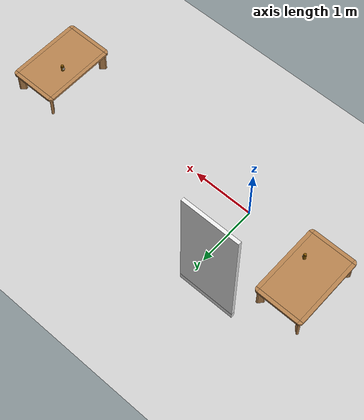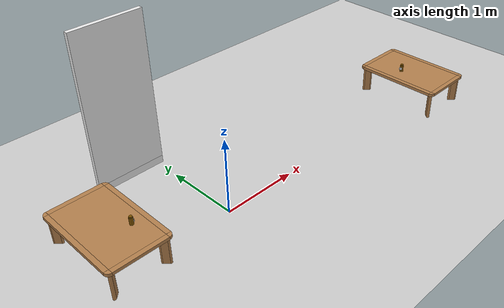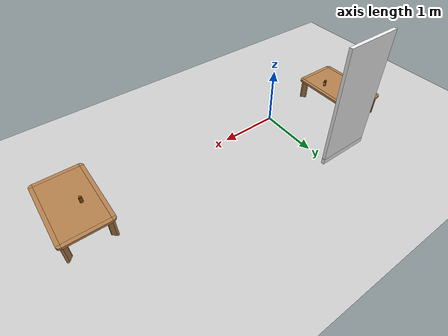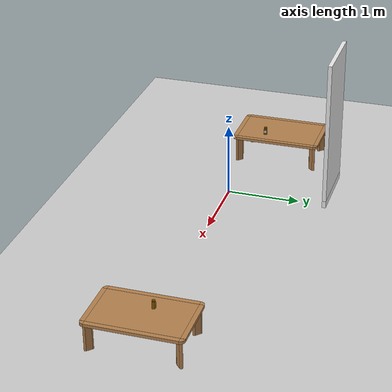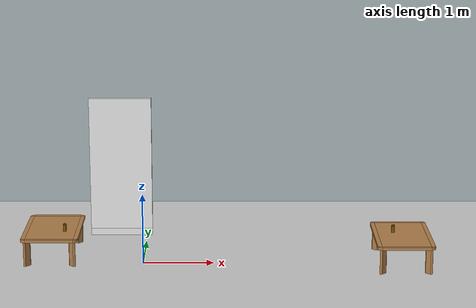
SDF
<sdf version="1.6">
 <world name="default">
  <model name="ground_plane">
   <static>1</static>
   <link name="link">
    <collision name="collision">
     <geometry><plane><normal>0 0 1</normal><size>100 100</size></plane></geometry>
     <surface><friction><ode><mu>100</mu><mu2>50</mu2></ode></friction></surface>
    </collision>
    <visual name="visual">
     <cast_shadows>0</cast_shadows>
     <geometry><plane><normal>0 0 1</normal><size>100 100</size></plane></geometry>
     <material>
      <script><uri>file://media/materials/scripts/gazebo.material</uri><name>Gazebo/Grey</name></script>
     </material>
    </visual>
   </link>
  </model>
  <model name="full_wall_55_920_2090_0">
   <link name="link">
    <inertial>
     <mass>50</mass>
     <inertia><ixx>1</ixx><ixy>0</ixy><ixz>0</ixz><iyy>1</iyy><iyz>0</iyz><izz>1</izz></inertia>
    </inertial>
    <visual name="bottom_frame">
     <pose>0 0 0.05 0 -0 0</pose>
     <geometry><box><size>0.055 0.92 0.1</size></box></geometry>
     <material>
      <script><uri>model://base_materials/color/scripts</uri><name>hsr_color/white</name></script>
     </material>
    </visual>
    <collision name="collision_bottom_frame">
     <pose>0 0 0.05 0 -0 0</pose>
     <geometry><box><size>0.055 0.92 0.1</size></box></geometry>
    </collision>
    <visual name="wall">
     <pose>0 0 1.095 0 -0 0</pose>
     <geometry><box><size>0.055 0.92 1.99</size></box></geometry>
     <material>
      <script>
       <uri>model://base_materials/wall/scripts</uri>
       <uri>model://base_materials/wall/textures</uri>
       <name>wall/white_noise</name>
      </script>
     </material>
    </visual>
    <collision name="collision_wall">
     <pose>0 0 1.095 0 -0 0</pose>
     <geometry><box><size>0.055 0.92 1.99</size></box></geometry>
    </collision>
    <velocity_decay><linear>0</linear><angular>0</angular></velocity_decay>
   </link>
   <static>1</static>
   <pose>-0.391738 1.37269 0 0 -0 1.5726</pose>
  </model>
  <model name="kitchen_lowtable_clone_3">
   <link name="link">
    <inertial>
     <mass>10</mass>
     <inertia><ixx>1</ixx><ixy>0</ixy><ixz>0</ixz><iyy>1</iyy><iyz>0</iyz><izz>1</izz></inertia>
    </inertial>
    <visual name="center_board">
     <pose>0 0 0.38 0 -0 0</pose>
     <geometry><box><size>0.68 1.13 0.04</size></box></geometry>
     <material>
      <script><uri>model://base_materials/wood/scripts/wood.material</uri><name>base_materials/wood</name></script>
     </material>
    </visual>
    <collision name="collision_center_board">
     <pose>0 0 0.38 0 -0 0</pose>
     <geometry><box><size>0.68 1.13 0.04</size></box></geometry>
    </collision>
    <visual name="front_board">
     <pose>0.37 0 0.38 0 -0 0</pose>
     <geometry><box><size>0.06 1.13 0.04</size></box></geometry>
     <material>
      <script><uri>model://base_materials/wood/scripts/wood.material</uri><name>base_materials/wood</name></script>
     </material>
    </visual>
    <collision name="collision_front_board">
     <pose>0.37 0 0.38 0 -0 0</pose>
     <geometry><box><size>0.06 1.13 0.04</size></box></geometry>
    </collision>
    <visual name="back_board">
     <pose>-0.37 0 0.38 0 -0 0</pose>
     <geometry><box><size>0.06 1.13 0.04</size></box></geometry>
     <material>
      <script><uri>model://base_materials/wood/scripts/wood.material</uri><name>base_materials/wood</name></script>
     </material>
    </visual>
    <collision name="collision_back_board">
     <pose>-0.37 0 0.38 0 -0 0</pose>
     <geometry><box><size>0.06 1.13 0.04</size></box></geometry>
    </collision>
    <visual name="right_board">
     <pose>0 0.595 0.38 0 -0 0</pose>
     <geometry><box><size>0.68 0.06 0.04</size></box></geometry>
     <material>
      <script><uri>model://base_materials/wood/scripts/wood.material</uri><name>base_materials/wood</name></script>
     </material>
    </visual>
    <collision name="collision_right_board">
     <pose>0 0.595 0.38 0 -0 0</pose>
     <geometry><box><size>0.68 0.06 0.04</size></box></geometry>
    </collision>
    <visual name="left_board">
     <pose>0 -0.595 0.38 0 -0 0</pose>
     <geometry><box><size>0.68 0.06 0.04</size></box></geometry>
     <material>
      <script><uri>model://base_materials/wood/scripts/wood.material</uri><name>base_materials/wood</name></script>
     </material>
    </visual>
    <collision name="collision_left_board">
     <pose>0 -0.595 0.38 0 -0 0</pose>
     <geometry><box><size>0.68 0.06 0.04</size></box></geometry>
    </collision>
    <visual name="front_right_corner_board">
     <pose>0.34 0.565 0.38 0 -0 0</pose>
     <geometry><cylinder><radius>0.06</radius><length>0.039</length></cylinder></geometry>
     <material>
      <script><uri>model://base_materials/wood/scripts/wood.material</uri><name>base_materials/wood</name></script>
     </material>
    </visual>
    <collision name="collision_front_right_corner_board">
     <pose>0.34 0.565 0.38 0 -0 0</pose>
     <geometry><cylinder><radius>0.06</radius><length>0.039</length></cylinder></geometry>
    </collision>
    <visual name="front_left_corner_board">
     <pose>0.34 -0.565 0.38 0 -0 0</pose>
     <geometry><cylinder><radius>0.06</radius><length>0.039</length></cylinder></geometry>
     <material>
      <script><uri>model://base_materials/wood/scripts/wood.material</uri><name>base_materials/wood</name></script>
     </material>
    </visual>
    <collision name="collision_front_left_corner_board">
     <pose>0.34 -0.565 0.38 0 -0 0</pose>
     <geometry><cylinder><radius>0.06</radius><length>0.039</length></cylinder></geometry>
    </collision>
    <visual name="front_back_right_corner_board">
     <pose>-0.34 0.565 0.38 0 -0 0</pose>
     <geometry><cylinder><radius>0.06</radius><length>0.039</length></cylinder></geometry>
     <material>
      <script><uri>model://base_materials/wood/scripts/wood.material</uri><name>base_materials/wood</name></script>
     </material>
    </visual>
    <collision name="collision_back_right_corner_board">
     <pose>-0.34 0.565 0.38 0 -0 0</pose>
     <geometry><cylinder><radius>0.06</radius><length>0.039</length></cylinder></geometry>
    </collision>
    <visual name="front_back_left_corner_board">
     <pose>-0.34 -0.565 0.38 0 -0 0</pose>
     <geometry><cylinder><radius>0.06</radius><length>0.039</length></cylinder></geometry>
     <material>
      <script><uri>model://base_materials/wood/scripts/wood.material</uri><name>base_materials/wood</name></script>
     </material>
    </visual>
    <collision name="collision_back_left_corner_board">
     <pose>-0.34 -0.565 0.38 0 -0 0</pose>
     <geometry><cylinder><radius>0.06</radius><length>0.039</length></cylinder></geometry>
    </collision>
    <visual name="front_left_corner_frame1">
     <pose>0.345858 -0.57086 0.18 0 -0 0</pose>
     <geometry><cylinder><radius>0.02</radius><length>0.36</length></cylinder></geometry>
     <material>
      <script><uri>model://base_materials/wood/scripts/wood.material</uri><name>base_materials/wood</name></script>
     </material>
    </visual>
    <collision name="collision_front_left_corner_frame1">
     <pose>0.345858 -0.57086 0.18 0 -0 0</pose>
     <geometry><cylinder><radius>0.02</radius><length>0.36</length></cylinder></geometry>
    </collision>
    <visual name="front_left_corner_frame2">
     <pose>0.317574 -0.54257 0.18 0 -0 0.7854</pose>
     <geometry><box><size>0.04 0.08 0.36</size></box></geometry>
     <material>
      <script><uri>model://base_materials/wood/scripts/wood.material</uri><name>base_materials/wood</name></script>
     </material>
    </visual>
    <collision name="collision_front_left_corner_frame2">
     <pose>0.317574 -0.54257 0.18 0 -0 0.7854</pose>
     <geometry><box><size>0.04 0.08 0.36</size></box></geometry>
    </collision>
    <visual name="front_left_corner_frame3">
     <pose>0.289289 -0.51429 0.18 0 -0 0</pose>
     <geometry><cylinder><radius>0.02</radius><length>0.36</length></cylinder></geometry>
     <material>
      <script><uri>model://base_materials/wood/scripts/wood.material</uri><name>base_materials/wood</name></script>
     </material>
    </visual>
    <collision name="collision_front_left_corner_frame3">
     <pose>0.289289 -0.51429 0.18 0 -0 0</pose>
     <geometry><cylinder><radius>0.02</radius><length>0.36</length></cylinder></geometry>
    </collision>
    <visual name="front_right_corner_frame1">
     <pose>0.345858 0.57086 0.18 0 -0 0</pose>
     <geometry><cylinder><radius>0.02</radius><length>0.36</length></cylinder></geometry>
     <material>
      <script><uri>model://base_materials/wood/scripts/wood.material</uri><name>base_materials/wood</name></script>
     </material>
    </visual>
    <collision name="collision_front_right_corner_frame1">
     <pose>0.345858 0.57086 0.18 0 -0 0</pose>
     <geometry><cylinder><radius>0.02</radius><length>0.36</length></cylinder></geometry>
    </collision>
    <visual name="front_right_corner_frame2">
     <pose>0.317574 0.54257 0.18 0 0 -0.7854</pose>
     <geometry><box><size>0.04 0.08 0.36</size></box></geometry>
     <material>
      <script><uri>model://base_materials/wood/scripts/wood.material</uri><name>base_materials/wood</name></script>
     </material>
    </visual>
    <collision name="collision_front_right_corner_frame2">
     <pose>0.317574 0.54257 0.18 0 0 -0.7854</pose>
     <geometry><box><size>0.04 0.08 0.36</size></box></geometry>
    </collision>
    <visual name="front_right_corner_frame3">
     <pose>0.289289 0.51429 0.18 0 -0 0</pose>
     <geometry><cylinder><radius>0.02</radius><length>0.36</length></cylinder></geometry>
     <material>
      <script><uri>model://base_materials/wood/scripts/wood.material</uri><name>base_materials/wood</name></script>
     </material>
    </visual>
    <collision name="collision_front_right_corner_frame3">
     <pose>0.289289 0.51429 0.18 0 -0 0</pose>
     <geometry><cylinder><radius>0.02</radius><length>0.36</length></cylinder></geometry>
    </collision>
    <visual name="back_left_corner_frame1">
     <pose>-0.345858 -0.57086 0.18 0 -0 0</pose>
     <geometry><cylinder><radius>0.02</radius><length>0.36</length></cylinder></geometry>
     <material>
      <script><uri>model://base_materials/wood/scripts/wood.material</uri><name>base_materials/wood</name></script>
     </material>
    </visual>
    <collision name="collision_back_left_corner_frame1">
     <pose>-0.345858 -0.57086 0.18 0 -0 0</pose>
     <geometry><cylinder><radius>0.02</radius><length>0.36</length></cylinder></geometry>
    </collision>
    <visual name="back_left_corner_frame2">
     <pose>-0.317574 -0.54257 0.18 0 0 -0.7854</pose>
     <geometry><box><size>0.04 0.08 0.36</size></box></geometry>
     <material>
      <script><uri>model://base_materials/wood/scripts/wood.material</uri><name>base_materials/wood</name></script>
     </material>
    </visual>
    <collision name="collision_back_left_corner_frame2">
     <pose>-0.317574 -0.54257 0.18 0 0 -0.7854</pose>
     <geometry><box><size>0.04 0.08 0.36</size></box></geometry>
    </collision>
    <visual name="back_left_corner_frame3">
     <pose>-0.289289 -0.51429 0.18 0 -0 0</pose>
     <geometry><cylinder><radius>0.02</radius><length>0.36</length></cylinder></geometry>
     <material>
      <script><uri>model://base_materials/wood/scripts/wood.material</uri><name>base_materials/wood</name></script>
     </material>
    </visual>
    <collision name="collision_back_left_corner_frame3">
     <pose>-0.289289 -0.51429 0.18 0 -0 0</pose>
     <geometry><cylinder><radius>0.02</radius><length>0.36</length></cylinder></geometry>
    </collision>
    <visual name="back_right_corner_frame1">
     <pose>-0.345858 0.57086 0.18 0 -0 0</pose>
     <geometry><cylinder><radius>0.02</radius><length>0.36</length></cylinder></geometry>
     <material>
      <script><uri>model://base_materials/wood/scripts/wood.material</uri><name>base_materials/wood</name></script>
     </material>
    </visual>
    <collision name="collision_back_right_corner_frame1">
     <pose>-0.345858 0.57086 0.18 0 -0 0</pose>
     <geometry><cylinder><radius>0.02</radius><length>0.36</length></cylinder></geometry>
    </collision>
    <visual name="back_right_corner_frame2">
     <pose>-0.317574 0.54257 0.18 0 -0 0.7854</pose>
     <geometry><box><size>0.04 0.08 0.36</size></box></geometry>
     <material>
      <script><uri>model://base_materials/wood/scripts/wood.material</uri><name>base_materials/wood</name></script>
     </material>
    </visual>
    <collision name="collision_back_right_corner_frame2">
     <pose>-0.317574 0.54257 0.18 0 -0 0.7854</pose>
     <geometry><box><size>0.04 0.08 0.36</size></box></geometry>
    </collision>
    <visual name="back_right_corner_frame3">
     <pose>-0.289289 0.51429 0.18 0 -0 0</pose>
     <geometry><cylinder><radius>0.02</radius><length>0.36</length></cylinder></geometry>
     <material>
      <script><uri>model://base_materials/wood/scripts/wood.material</uri><name>base_materials/wood</name></script>
     </material>
    </visual>
    <collision name="collision_back_right_corner_frame3">
     <pose>-0.289289 0.51429 0.18 0 -0 0</pose>
     <geometry><cylinder><radius>0.02</radius><length>0.36</length></cylinder></geometry>
    </collision>
    <velocity_decay><linear>0</linear><angular>0</angular></velocity_decay>
   </link>
   <static>1</static>
   <pose>3.66768 0.072472 0 0 -0 0</pose>
  </model>
  <model name="kitchen_lowtable_clone_4">
   <link name="link">
    <inertial>
     <mass>10</mass>
     <inertia><ixx>1</ixx><ixy>0</ixy><ixz>0</ixz><iyy>1</iyy><iyz>0</iyz><izz>1</izz></inertia>
    </inertial>
    <visual name="center_board">
     <pose>0 0 0.38 0 -0 0</pose>
     <geometry><box><size>0.68 1.13 0.04</size></box></geometry>
     <material>
      <script><uri>model://base_materials/wood/scripts/wood.material</uri><name>base_materials/wood</name></script>
     </material>
    </visual>
    <collision name="collision_center_board">
     <pose>0 0 0.38 0 -0 0</pose>
     <geometry><box><size>0.68 1.13 0.04</size></box></geometry>
    </collision>
    <visual name="front_board">
     <pose>0.37 0 0.38 0 -0 0</pose>
     <geometry><box><size>0.06 1.13 0.04</size></box></geometry>
     <material>
      <script><uri>model://base_materials/wood/scripts/wood.material</uri><name>base_materials/wood</name></script>
     </material>
    </visual>
    <collision name="collision_front_board">
     <pose>0.37 0 0.38 0 -0 0</pose>
     <geometry><box><size>0.06 1.13 0.04</size></box></geometry>
    </collision>
    <visual name="back_board">
     <pose>-0.37 0 0.38 0 -0 0</pose>
     <geometry><box><size>0.06 1.13 0.04</size></box></geometry>
     <material>
      <script><uri>model://base_materials/wood/scripts/wood.material</uri><name>base_materials/wood</name></script>
     </material>
    </visual>
    <collision name="collision_back_board">
     <pose>-0.37 0 0.38 0 -0 0</pose>
     <geometry><box><size>0.06 1.13 0.04</size></box></geometry>
    </collision>
    <visual name="right_board">
     <pose>0 0.595 0.38 0 -0 0</pose>
     <geometry><box><size>0.68 0.06 0.04</size></box></geometry>
     <material>
      <script><uri>model://base_materials/wood/scripts/wood.material</uri><name>base_materials/wood</name></script>
     </material>
    </visual>
    <collision name="collision_right_board">
     <pose>0 0.595 0.38 0 -0 0</pose>
     <geometry><box><size>0.68 0.06 0.04</size></box></geometry>
    </collision>
    <visual name="left_board">
     <pose>0 -0.595 0.38 0 -0 0</pose>
     <geometry><box><size>0.68 0.06 0.04</size></box></geometry>
     <material>
      <script><uri>model://base_materials/wood/scripts/wood.material</uri><name>base_materials/wood</name></script>
     </material>
    </visual>
    <collision name="collision_left_board">
     <pose>0 -0.595 0.38 0 -0 0</pose>
     <geometry><box><size>0.68 0.06 0.04</size></box></geometry>
    </collision>
    <visual name="front_right_corner_board">
     <pose>0.34 0.565 0.38 0 -0 0</pose>
     <geometry><cylinder><radius>0.06</radius><length>0.039</length></cylinder></geometry>
     <material>
      <script><uri>model://base_materials/wood/scripts/wood.material</uri><name>base_materials/wood</name></script>
     </material>
    </visual>
    <collision name="collision_front_right_corner_board">
     <pose>0.34 0.565 0.38 0 -0 0</pose>
     <geometry><cylinder><radius>0.06</radius><length>0.039</length></cylinder></geometry>
    </collision>
    <visual name="front_left_corner_board">
     <pose>0.34 -0.565 0.38 0 -0 0</pose>
     <geometry><cylinder><radius>0.06</radius><length>0.039</length></cylinder></geometry>
     <material>
      <script><uri>model://base_materials/wood/scripts/wood.material</uri><name>base_materials/wood</name></script>
     </material>
    </visual>
    <collision name="collision_front_left_corner_board">
     <pose>0.34 -0.565 0.38 0 -0 0</pose>
     <geometry><cylinder><radius>0.06</radius><length>0.039</length></cylinder></geometry>
    </collision>
    <visual name="front_back_right_corner_board">
     <pose>-0.34 0.565 0.38 0 -0 0</pose>
     <geometry><cylinder><radius>0.06</radius><length>0.039</length></cylinder></geometry>
     <material>
      <script><uri>model://base_materials/wood/scripts/wood.material</uri><name>base_materials/wood</name></script>
     </material>
    </visual>
    <collision name="collision_back_right_corner_board">
     <pose>-0.34 0.565 0.38 0 -0 0</pose>
     <geometry><cylinder><radius>0.06</radius><length>0.039</length></cylinder></geometry>
    </collision>
    <visual name="front_back_left_corner_board">
     <pose>-0.34 -0.565 0.38 0 -0 0</pose>
     <geometry><cylinder><radius>0.06</radius><length>0.039</length></cylinder></geometry>
     <material>
      <script><uri>model://base_materials/wood/scripts/wood.material</uri><name>base_materials/wood</name></script>
     </material>
    </visual>
    <collision name="collision_back_left_corner_board">
     <pose>-0.34 -0.565 0.38 0 -0 0</pose>
     <geometry><cylinder><radius>0.06</radius><length>0.039</length></cylinder></geometry>
    </collision>
    <visual name="front_left_corner_frame1">
     <pose>0.345858 -0.57086 0.18 0 -0 0</pose>
     <geometry><cylinder><radius>0.02</radius><length>0.36</length></cylinder></geometry>
     <material>
      <script><uri>model://base_materials/wood/scripts/wood.material</uri><name>base_materials/wood</name></script>
     </material>
    </visual>
    <collision name="collision_front_left_corner_frame1">
     <pose>0.345858 -0.57086 0.18 0 -0 0</pose>
     <geometry><cylinder><radius>0.02</radius><length>0.36</length></cylinder></geometry>
    </collision>
    <visual name="front_left_corner_frame2">
     <pose>0.317574 -0.54257 0.18 0 -0 0.7854</pose>
     <geometry><box><size>0.04 0.08 0.36</size></box></geometry>
     <material>
      <script><uri>model://base_materials/wood/scripts/wood.material</uri><name>base_materials/wood</name></script>
     </material>
    </visual>
    <collision name="collision_front_left_corner_frame2">
     <pose>0.317574 -0.54257 0.18 0 -0 0.7854</pose>
     <geometry><box><size>0.04 0.08 0.36</size></box></geometry>
    </collision>
    <visual name="front_left_corner_frame3">
     <pose>0.289289 -0.51429 0.18 0 -0 0</pose>
     <geometry><cylinder><radius>0.02</radius><length>0.36</length></cylinder></geometry>
     <material>
      <script><uri>model://base_materials/wood/scripts/wood.material</uri><name>base_materials/wood</name></script>
     </material>
    </visual>
    <collision name="collision_front_left_corner_frame3">
     <pose>0.289289 -0.51429 0.18 0 -0 0</pose>
     <geometry><cylinder><radius>0.02</radius><length>0.36</length></cylinder></geometry>
    </collision>
    <visual name="front_right_corner_frame1">
     <pose>0.345858 0.57086 0.18 0 -0 0</pose>
     <geometry><cylinder><radius>0.02</radius><length>0.36</length></cylinder></geometry>
     <material>
      <script><uri>model://base_materials/wood/scripts/wood.material</uri><name>base_materials/wood</name></script>
     </material>
    </visual>
    <collision name="collision_front_right_corner_frame1">
     <pose>0.345858 0.57086 0.18 0 -0 0</pose>
     <geometry><cylinder><radius>0.02</radius><length>0.36</length></cylinder></geometry>
    </collision>
    <visual name="front_right_corner_frame2">
     <pose>0.317574 0.54257 0.18 0 0 -0.7854</pose>
     <geometry><box><size>0.04 0.08 0.36</size></box></geometry>
     <material>
      <script><uri>model://base_materials/wood/scripts/wood.material</uri><name>base_materials/wood</name></script>
     </material>
    </visual>
    <collision name="collision_front_right_corner_frame2">
     <pose>0.317574 0.54257 0.18 0 0 -0.7854</pose>
     <geometry><box><size>0.04 0.08 0.36</size></box></geometry>
    </collision>
    <visual name="front_right_corner_frame3">
     <pose>0.289289 0.51429 0.18 0 -0 0</pose>
     <geometry><cylinder><radius>0.02</radius><length>0.36</length></cylinder></geometry>
     <material>
      <script><uri>model://base_materials/wood/scripts/wood.material</uri><name>base_materials/wood</name></script>
     </material>
    </visual>
    <collision name="collision_front_right_corner_frame3">
     <pose>0.289289 0.51429 0.18 0 -0 0</pose>
     <geometry><cylinder><radius>0.02</radius><length>0.36</length></cylinder></geometry>
    </collision>
    <visual name="back_left_corner_frame1">
     <pose>-0.345858 -0.57086 0.18 0 -0 0</pose>
     <geometry><cylinder><radius>0.02</radius><length>0.36</length></cylinder></geometry>
     <material>
      <script><uri>model://base_materials/wood/scripts/wood.material</uri><name>base_materials/wood</name></script>
     </material>
    </visual>
    <collision name="collision_back_left_corner_frame1">
     <pose>-0.345858 -0.57086 0.18 0 -0 0</pose>
     <geometry><cylinder><radius>0.02</radius><length>0.36</length></cylinder></geometry>
    </collision>
    <visual name="back_left_corner_frame2">
     <pose>-0.317574 -0.54257 0.18 0 0 -0.7854</pose>
     <geometry><box><size>0.04 0.08 0.36</size></box></geometry>
     <material>
      <script><uri>model://base_materials/wood/scripts/wood.material</uri><name>base_materials/wood</name></script>
     </material>
    </visual>
    <collision name="collision_back_left_corner_frame2">
     <pose>-0.317574 -0.54257 0.18 0 0 -0.7854</pose>
     <geometry><box><size>0.04 0.08 0.36</size></box></geometry>
    </collision>
    <visual name="back_left_corner_frame3">
     <pose>-0.289289 -0.51429 0.18 0 -0 0</pose>
     <geometry><cylinder><radius>0.02</radius><length>0.36</length></cylinder></geometry>
     <material>
      <script><uri>model://base_materials/wood/scripts/wood.material</uri><name>base_materials/wood</name></script>
     </material>
    </visual>
    <collision name="collision_back_left_corner_frame3">
     <pose>-0.289289 -0.51429 0.18 0 -0 0</pose>
     <geometry><cylinder><radius>0.02</radius><length>0.36</length></cylinder></geometry>
    </collision>
    <visual name="back_right_corner_frame1">
     <pose>-0.345858 0.57086 0.18 0 -0 0</pose>
     <geometry><cylinder><radius>0.02</radius><length>0.36</length></cylinder></geometry>
     <material>
      <script><uri>model://base_materials/wood/scripts/wood.material</uri><name>base_materials/wood</name></script>
     </material>
    </visual>
    <collision name="collision_back_right_corner_frame1">
     <pose>-0.345858 0.57086 0.18 0 -0 0</pose>
     <geometry><cylinder><radius>0.02</radius><length>0.36</length></cylinder></geometry>
    </collision>
    <visual name="back_right_corner_frame2">
     <pose>-0.317574 0.54257 0.18 0 -0 0.7854</pose>
     <geometry><box><size>0.04 0.08 0.36</size></box></geometry>
     <material>
      <script><uri>model://base_materials/wood/scripts/wood.material</uri><name>base_materials/wood</name></script>
     </material>
    </visual>
    <collision name="collision_back_right_corner_frame2">
     <pose>-0.317574 0.54257 0.18 0 -0 0.7854</pose>
     <geometry><box><size>0.04 0.08 0.36</size></box></geometry>
    </collision>
    <visual name="back_right_corner_frame3">
     <pose>-0.289289 0.51429 0.18 0 -0 0</pose>
     <geometry><cylinder><radius>0.02</radius><length>0.36</length></cylinder></geometry>
     <material>
      <script><uri>model://base_materials/wood/scripts/wood.material</uri><name>base_materials/wood</name></script>
     </material>
    </visual>
    <collision name="collision_back_right_corner_frame3">
     <pose>-0.289289 0.51429 0.18 0 -0 0</pose>
     <geometry><cylinder><radius>0.02</radius><length>0.36</length></cylinder></geometry>
    </collision>
    <velocity_decay><linear>0</linear><angular>0</angular></velocity_decay>
   </link>
   <static>1</static>
   <pose>-1.30761 0.412178 0 0 -0 0</pose>
  </model>
  <model name="bottle_clone_2_clone_1">
   <link name="link">
    <inertial>
     <mass>0.05</mass>
     <inertia><ixx>0.00058</ixx><ixy>0</ixy><ixz>0</ixz><iyy>0.00058</iyy><iyz>0</iyz><izz>0.00016</izz></inertia>
    </inertial>
    <visual name="top">
     <pose>0 0 0.0555 0 -0 0</pose>
     <geometry><cylinder><radius>0.019</radius><length>0.016</length></cylinder></geometry>
     <material>
      <ambient>1 0.647 0 1</ambient>
      <diffuse>0.5 0.3235 0 1</diffuse>
      <specular>0.1 0.1 0.1 1</specular>
      <emissive>0 0 0 0</emissive>
     </material>
    </visual>
    <collision name="collision_top">
     <pose>0 0 0.0555 0 -0 0</pose>
     <geometry><cylinder><radius>0.019</radius><length>0.016</length></cylinder></geometry>
     <surface>
      <bounce><restitution_coefficient>0.2</restitution_coefficient><threshold>0</threshold></bounce>
      <contact><ode><kp>10000</kp><max_vel>10</max_vel></ode></contact>
     </surface>
    </collision>
    <visual name="bottom">
     <geometry><cylinder><radius>0.0245</radius><length>0.095</length></cylinder></geometry>
     <material>
      <ambient>1 0.7 0.3 1</ambient>
      <diffuse>0.5 0.3235 0 1</diffuse>
      <specular>0.1 0.1 0.1 1</specular>
      <emissive>0 0 0 0</emissive>
     </material>
    </visual>
    <collision name="collision_bottom">
     <geometry><cylinder><radius>0.0245</radius><length>0.095</length></cylinder></geometry>
     <surface>
      <bounce><restitution_coefficient>0.2</restitution_coefficient><threshold>0</threshold></bounce>
      <contact><ode><kp>100000</kp><max_vel>10</max_vel></ode></contact>
     </surface>
    </collision>
    <velocity_decay><linear>0</linear><angular>0</angular></velocity_decay>
    <visual name="marker_4000">
     <pose>0.0245 0 0 0 1.57 3.141</pose>
     <geometry><box><size>0.045 0.045 0.0001</size></box></geometry>
     <material>
      <script>
       <uri>model://marker/4000/scripts</uri>
       <uri>model://marker/4000/textures</uri>
       <name>Marker/4000</name>
      </script>
     </material>
    </visual>
   </link>
   <static>0</static>
   <pose>-1.12262 0.222716 0.4475 -9e-06 -6e-06 0.03372</pose>
  </model>
  <model name="bottle_clone_2_clone_2">
   <link name="link">
    <inertial>
     <mass>0.05</mass>
     <inertia><ixx>0.00058</ixx><ixy>0</ixy><ixz>0</ixz><iyy>0.00058</iyy><iyz>0</iyz><izz>0.00016</izz></inertia>
    </inertial>
    <visual name="top">
     <pose>0 0 0.0555 0 -0 0</pose>
     <geometry><cylinder><radius>0.019</radius><length>0.016</length></cylinder></geometry>
     <material>
      <ambient>1 0.647 0 1</ambient>
      <diffuse>0.5 0.3235 0 1</diffuse>
      <specular>0.1 0.1 0.1 1</specular>
      <emissive>0 0 0 0</emissive>
     </material>
    </visual>
    <collision name="collision_top">
     <pose>0 0 0.0555 0 -0 0</pose>
     <geometry><cylinder><radius>0.019</radius><length>0.016</length></cylinder></geometry>
     <surface>
      <bounce><restitution_coefficient>0.2</restitution_coefficient><threshold>0</threshold></bounce>
      <contact><ode><kp>10000</kp><max_vel>10</max_vel></ode></contact>
     </surface>
    </collision>
    <visual name="bottom">
     <geometry><cylinder><radius>0.0245</radius><length>0.095</length></cylinder></geometry>
     <material>
      <ambient>1 0.7 0.3 1</ambient>
      <diffuse>0.5 0.3235 0 1</diffuse>
      <specular>0.1 0.1 0.1 1</specular>
      <emissive>0 0 0 0</emissive>
     </material>
    </visual>
    <collision name="collision_bottom">
     <geometry><cylinder><radius>0.0245</radius><length>0.095</length></cylinder></geometry>
     <surface>
      <bounce><restitution_coefficient>0.2</restitution_coefficient><threshold>0</threshold></bounce>
      <contact><ode><kp>100000</kp><max_vel>10</max_vel></ode></contact>
     </surface>
    </collision>
    <velocity_decay><linear>0</linear><angular>0</angular></velocity_decay>
    <visual name="marker_4000">
     <pose>0.0245 0 0 0 1.57 3.141</pose>
     <geometry><box><size>0.045 0.045 0.0001</size></box></geometry>
     <material>
      <script>
       <uri>model://marker/4000/scripts</uri>
       <uri>model://marker/4000/textures</uri>
       <name>Marker/4000</name>
      </script>
     </material>
    </visual>
   </link>
   <static>0</static>
   <pose>3.54662 0.164351 0.4475 7e-06 -9e-06 3.13829</pose>
  </model>
 </world>
</sdf>
